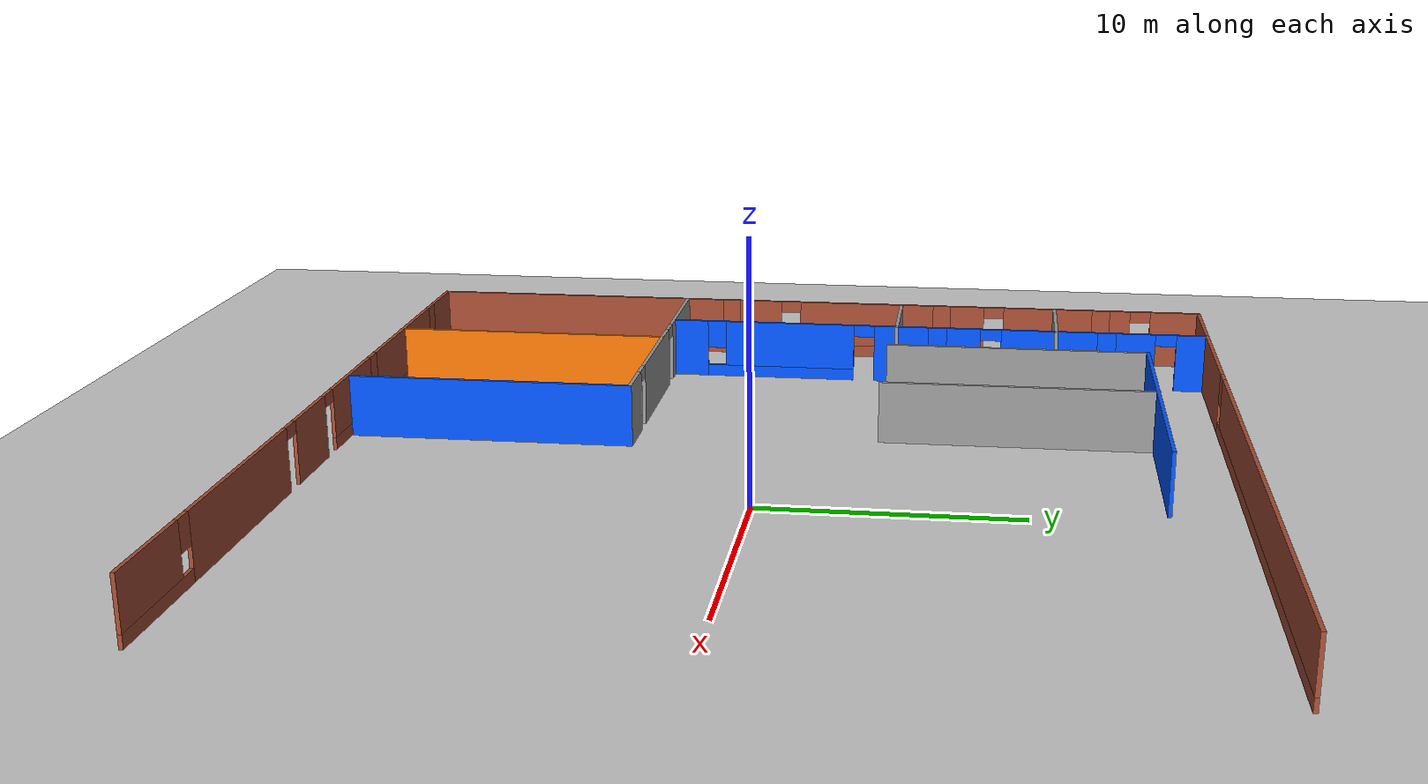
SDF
<sdf version="1.6">
 <world name="default">
  <model name="ground_plane">
   <static>1</static>
   <link name="link">
    <collision name="collision">
     <geometry><plane><normal>0 0 1</normal><size>100 100</size></plane></geometry>
     <surface>
      <contact><collide_bitmask>65535</collide_bitmask></contact>
      <friction><ode><mu>100</mu><mu2>50</mu2></ode></friction>
     </surface>
    </collision>
    <visual name="visual">
     <cast_shadows>0</cast_shadows>
     <geometry><plane><normal>0 0 1</normal><size>100 100</size></plane></geometry>
     <material>
      <script><uri>file://media/materials/scripts/gazebo.material</uri><name>Gazebo/Grey</name></script>
     </material>
    </visual>
   </link>
  </model>
  <model name="mybuilding">
   <pose>-3.17483 0.2831 0 0 -0 0</pose>
   <link name="Wall_0">
    <pose>-0.032167 17.425 0 0 -0 0.001673</pose>
    <visual name="Wall_0_Visual_0">
     <pose>-12.5646 0 1.25 0 -0 0</pose>
     <geometry><box><size>9.77748 0.15 2.5</size></box></geometry>
     <material>
      <script><uri>file://media/materials/scripts/gazebo.material</uri><name>Gazebo/Bricks</name></script>
      <ambient>1 1 1 1</ambient>
     </material>
     <meta><layer>0</layer></meta>
    </visual>
    <collision name="Wall_0_Collision_0">
     <geometry><box><size>9.77748 0.15 2.5</size></box></geometry>
     <pose>-12.5646 0 1.25 0 -0 0</pose>
    </collision>
    <visual name="Wall_0_Visual_1">
     <pose>4.88874 0 0.25 0 -0 0</pose>
     <geometry><box><size>25.1293 0.15 0.5</size></box></geometry>
     <material>
      <script><uri>file://media/materials/scripts/gazebo.material</uri><name>Gazebo/Bricks</name></script>
      <ambient>1 1 1 1</ambient>
     </material>
     <meta><layer>0</layer></meta>
    </visual>
    <collision name="Wall_0_Collision_1">
     <geometry><box><size>25.1293 0.15 0.5</size></box></geometry>
     <pose>4.88874 0 0.25 0 -0 0</pose>
    </collision>
    <visual name="Wall_0_Visual_2">
     <pose>5.28874 0 1.5 0 -0 0</pose>
     <geometry><box><size>24.3293 0.15 2</size></box></geometry>
     <material>
      <script><uri>file://media/materials/scripts/gazebo.material</uri><name>Gazebo/Bricks</name></script>
      <ambient>1 1 1 1</ambient>
     </material>
     <meta><layer>0</layer></meta>
    </visual>
    <collision name="Wall_0_Collision_2">
     <geometry><box><size>24.3293 0.15 2</size></box></geometry>
     <pose>5.28874 0 1.5 0 -0 0</pose>
    </collision>
    <visual name="Wall_0_Visual_3">
     <pose>-7.2759 0 1.9 0 -0 0</pose>
     <geometry><box><size>0.8 0.15 1.2</size></box></geometry>
     <material>
      <script><uri>file://media/materials/scripts/gazebo.material</uri><name>Gazebo/Bricks</name></script>
      <ambient>1 1 1 1</ambient>
     </material>
     <meta><layer>0</layer></meta>
    </visual>
    <collision name="Wall_0_Collision_3">
     <geometry><box><size>0.8 0.15 1.2</size></box></geometry>
     <pose>-7.2759 0 1.9 0 -0 0</pose>
    </collision>
   </link>
   <link name="Wall_11">
    <pose>-0.003817 -17.4439 0 0 -0 0.000584</pose>
    <visual name="Wall_11_Visual_0">
     <pose>-16.2159 0 1.25 0 -0 0</pose>
     <geometry><box><size>2.53083 0.15 2.5</size></box></geometry>
     <material>
      <script><uri>file://media/materials/scripts/gazebo.material</uri><name>Gazebo/Bricks</name></script>
      <ambient>1 1 1 1</ambient>
     </material>
     <meta><layer>0</layer></meta>
    </visual>
    <collision name="Wall_11_Collision_0">
     <geometry><box><size>2.53083 0.15 2.5</size></box></geometry>
     <pose>-16.2159 0 1.25 0 -0 0</pose>
    </collision>
    <visual name="Wall_11_Visual_1">
     <pose>1.13173 0 1.25 0 -0 0</pose>
     <geometry><box><size>3.14674 0.15 2.5</size></box></geometry>
     <material>
      <script><uri>file://media/materials/scripts/gazebo.material</uri><name>Gazebo/Bricks</name></script>
      <ambient>1 1 1 1</ambient>
     </material>
     <meta><layer>0</layer></meta>
    </visual>
    <collision name="Wall_11_Collision_1">
     <geometry><box><size>3.14674 0.15 2.5</size></box></geometry>
     <pose>1.13173 0 1.25 0 -0 0</pose>
    </collision>
    <visual name="Wall_11_Visual_2">
     <pose>7.9258 0 1.25 0 -0 0</pose>
     <geometry><box><size>8.64142 0.15 2.5</size></box></geometry>
     <material>
      <script><uri>file://media/materials/scripts/gazebo.material</uri><name>Gazebo/Bricks</name></script>
      <ambient>1 1 1 1</ambient>
     </material>
     <meta><layer>0</layer></meta>
    </visual>
    <collision name="Wall_11_Collision_2">
     <geometry><box><size>8.64142 0.15 2.5</size></box></geometry>
     <pose>7.9258 0 1.25 0 -0 0</pose>
    </collision>
    <visual name="Wall_11_Visual_3">
     <pose>-8.14608 0 0.25 0 -0 0</pose>
     <geometry><box><size>13.6089 0.15 0.5</size></box></geometry>
     <material>
      <script><uri>file://media/materials/scripts/gazebo.material</uri><name>Gazebo/Bricks</name></script>
      <ambient>1 1 1 1</ambient>
     </material>
     <meta><layer>0</layer></meta>
    </visual>
    <collision name="Wall_11_Collision_3">
     <geometry><box><size>13.6089 0.15 0.5</size></box></geometry>
     <pose>-8.14608 0 0.25 0 -0 0</pose>
    </collision>
    <visual name="Wall_11_Visual_4">
     <pose>14.8639 0 0.25 0 -0 0</pose>
     <geometry><box><size>5.23484 0.15 0.5</size></box></geometry>
     <material>
      <script><uri>file://media/materials/scripts/gazebo.material</uri><name>Gazebo/Bricks</name></script>
      <ambient>1 1 1 1</ambient>
     </material>
     <meta><layer>0</layer></meta>
    </visual>
    <collision name="Wall_11_Collision_4">
     <geometry><box><size>5.23484 0.15 0.5</size></box></geometry>
     <pose>14.8639 0 0.25 0 -0 0</pose>
    </collision>
    <visual name="Wall_11_Visual_5">
     <pose>-10.4098 0 1.5 0 -0 0</pose>
     <geometry><box><size>7.48141 0.15 2</size></box></geometry>
     <material>
      <script><uri>file://media/materials/scripts/gazebo.material</uri><name>Gazebo/Bricks</name></script>
      <ambient>1 1 1 1</ambient>
     </material>
     <meta><layer>0</layer></meta>
    </visual>
    <collision name="Wall_11_Collision_5">
     <geometry><box><size>7.48141 0.15 2</size></box></geometry>
     <pose>-10.4098 0 1.5 0 -0 0</pose>
    </collision>
    <visual name="Wall_11_Visual_6">
     <pose>-3.60538 0 1.5 0 -0 0</pose>
     <geometry><box><size>4.52747 0.15 2</size></box></geometry>
     <material>
      <script><uri>file://media/materials/scripts/gazebo.material</uri><name>Gazebo/Bricks</name></script>
      <ambient>1 1 1 1</ambient>
     </material>
     <meta><layer>0</layer></meta>
    </visual>
    <collision name="Wall_11_Collision_6">
     <geometry><box><size>4.52747 0.15 2</size></box></geometry>
     <pose>-3.60538 0 1.5 0 -0 0</pose>
    </collision>
    <visual name="Wall_11_Visual_7">
     <pose>-3.60538 0 1.5 0 -0 0</pose>
     <geometry><box><size>4.52747 0.15 2</size></box></geometry>
     <material>
      <script><uri>file://media/materials/scripts/gazebo.material</uri><name>Gazebo/Bricks</name></script>
      <ambient>1 1 1 1</ambient>
     </material>
     <meta><layer>0</layer></meta>
    </visual>
    <collision name="Wall_11_Collision_7">
     <geometry><box><size>4.52747 0.15 2</size></box></geometry>
     <pose>-3.60538 0 1.5 0 -0 0</pose>
    </collision>
    <visual name="Wall_11_Visual_8">
     <pose>15.2639 0 1.5 0 -0 0</pose>
     <geometry><box><size>4.43484 0.15 2</size></box></geometry>
     <material>
      <script><uri>file://media/materials/scripts/gazebo.material</uri><name>Gazebo/Bricks</name></script>
      <ambient>1 1 1 1</ambient>
     </material>
     <meta><layer>0</layer></meta>
    </visual>
    <collision name="Wall_11_Collision_8">
     <geometry><box><size>4.43484 0.15 2</size></box></geometry>
     <pose>15.2639 0 1.5 0 -0 0</pose>
    </collision>
    <visual name="Wall_11_Visual_9">
     <pose>-14.5505 0 1.9 0 -0 0</pose>
     <geometry><box><size>0.8 0.15 1.2</size></box></geometry>
     <material>
      <script><uri>file://media/materials/scripts/gazebo.material</uri><name>Gazebo/Bricks</name></script>
      <ambient>1 1 1 1</ambient>
     </material>
     <meta><layer>0</layer></meta>
    </visual>
    <collision name="Wall_11_Collision_9">
     <geometry><box><size>0.8 0.15 1.2</size></box></geometry>
     <pose>-14.5505 0 1.9 0 -0 0</pose>
    </collision>
    <visual name="Wall_11_Visual_10">
     <pose>12.6465 0 1.9 0 -0 0</pose>
     <geometry><box><size>0.8 0.15 1.2</size></box></geometry>
     <material>
      <script><uri>file://media/materials/scripts/gazebo.material</uri><name>Gazebo/Bricks</name></script>
      <ambient>1 1 1 1</ambient>
     </material>
     <meta><layer>0</layer></meta>
    </visual>
    <collision name="Wall_11_Collision_10">
     <geometry><box><size>0.8 0.15 1.2</size></box></geometry>
     <pose>12.6465 0 1.9 0 -0 0</pose>
    </collision>
    <visual name="Wall_11_Visual_11">
     <pose>-6.26911 0 1.9 0 -0 0</pose>
     <geometry><box><size>0.8 0.15 1.2</size></box></geometry>
     <material>
      <script><uri>file://media/materials/scripts/gazebo.material</uri><name>Gazebo/Bricks</name></script>
      <ambient>1 1 1 1</ambient>
     </material>
     <meta><layer>0</layer></meta>
    </visual>
    <collision name="Wall_11_Collision_11">
     <geometry><box><size>0.8 0.15 1.2</size></box></geometry>
     <pose>-6.26911 0 1.9 0 -0 0</pose>
    </collision>
    <visual name="Wall_11_Visual_12">
     <pose>3.1551 0 2.25 0 -0 0</pose>
     <geometry><box><size>0.9 0.15 0.5</size></box></geometry>
     <material>
      <script><uri>file://media/materials/scripts/gazebo.material</uri><name>Gazebo/Bricks</name></script>
      <ambient>1 1 1 1</ambient>
     </material>
     <meta><layer>0</layer></meta>
    </visual>
    <collision name="Wall_11_Collision_12">
     <geometry><box><size>0.9 0.15 0.5</size></box></geometry>
     <pose>3.1551 0 2.25 0 -0 0</pose>
    </collision>
    <visual name="Wall_11_Visual_13">
     <pose>-0.89164 0 2.25 0 -0 0</pose>
     <geometry><box><size>0.9 0.15 0.5</size></box></geometry>
     <material>
      <script><uri>file://media/materials/scripts/gazebo.material</uri><name>Gazebo/Bricks</name></script>
      <ambient>1 1 1 1</ambient>
     </material>
     <meta><layer>0</layer></meta>
    </visual>
    <collision name="Wall_11_Collision_13">
     <geometry><box><size>0.9 0.15 0.5</size></box></geometry>
     <pose>-0.89164 0 2.25 0 -0 0</pose>
    </collision>
    <visual name="Wall_11_Visual_14">
     <pose>-0.89164 0 2.25 0 -0 0</pose>
     <geometry><box><size>0.9 0.15 0.5</size></box></geometry>
     <material>
      <script><uri>file://media/materials/scripts/gazebo.material</uri><name>Gazebo/Bricks</name></script>
      <ambient>1 1 1 1</ambient>
     </material>
     <meta><layer>0</layer></meta>
    </visual>
    <collision name="Wall_11_Collision_14">
     <geometry><box><size>0.9 0.15 0.5</size></box></geometry>
     <pose>-0.89164 0 2.25 0 -0 0</pose>
    </collision>
   </link>
   <link name="Wall_13">
    <pose>-10.3069 -5.93049 0 0 -0 0</pose>
    <visual name="Wall_13_Visual_0">
     <pose>-4.77531 0 1.25 0 -0 0</pose>
     <geometry><box><size>4.69938 0.15 2.5</size></box></geometry>
     <material>
      <script><uri>file://media/materials/scripts/gazebo.material</uri><name>Gazebo/Grey</name></script>
      <ambient>1 1 1 1</ambient>
     </material>
     <meta><layer>0</layer></meta>
    </visual>
    <collision name="Wall_13_Collision_0">
     <geometry><box><size>4.69938 0.15 2.5</size></box></geometry>
     <pose>-4.77531 0 1.25 0 -0 0</pose>
    </collision>
    <visual name="Wall_13_Visual_1">
     <pose>1.31815 0 1.25 0 -0 0</pose>
     <geometry><box><size>5.68753 0.15 2.5</size></box></geometry>
     <material>
      <script><uri>file://media/materials/scripts/gazebo.material</uri><name>Gazebo/Grey</name></script>
      <ambient>1 1 1 1</ambient>
     </material>
     <meta><layer>0</layer></meta>
    </visual>
    <collision name="Wall_13_Collision_1">
     <geometry><box><size>5.68753 0.15 2.5</size></box></geometry>
     <pose>1.31815 0 1.25 0 -0 0</pose>
    </collision>
    <visual name="Wall_13_Visual_2">
     <pose>6.09346 0 1.25 0 -0 0</pose>
     <geometry><box><size>2.06308 0.15 2.5</size></box></geometry>
     <material>
      <script><uri>file://media/materials/scripts/gazebo.material</uri><name>Gazebo/Grey</name></script>
      <ambient>1 1 1 1</ambient>
     </material>
     <meta><layer>0</layer></meta>
    </visual>
    <collision name="Wall_13_Collision_2">
     <geometry><box><size>2.06308 0.15 2.5</size></box></geometry>
     <pose>6.09346 0 1.25 0 -0 0</pose>
    </collision>
    <visual name="Wall_13_Visual_3">
     <pose>-1.97562 0 2.25 0 -0 0</pose>
     <geometry><box><size>0.9 0.15 0.5</size></box></geometry>
     <material>
      <script><uri>file://media/materials/scripts/gazebo.material</uri><name>Gazebo/Grey</name></script>
      <ambient>1 1 1 1</ambient>
     </material>
     <meta><layer>0</layer></meta>
    </visual>
    <collision name="Wall_13_Collision_3">
     <geometry><box><size>0.9 0.15 0.5</size></box></geometry>
     <pose>-1.97562 0 2.25 0 -0 0</pose>
    </collision>
    <visual name="Wall_13_Visual_4">
     <pose>4.61192 0 2.25 0 -0 0</pose>
     <geometry><box><size>0.9 0.15 0.5</size></box></geometry>
     <material>
      <script><uri>file://media/materials/scripts/gazebo.material</uri><name>Gazebo/Grey</name></script>
      <ambient>1 1 1 1</ambient>
     </material>
     <meta><layer>0</layer></meta>
    </visual>
    <collision name="Wall_13_Collision_4">
     <geometry><box><size>0.9 0.15 0.5</size></box></geometry>
     <pose>4.61192 0 2.25 0 -0 0</pose>
    </collision>
   </link>
   <link name="Wall_14">
    <collision name="Wall_14_Collision">
     <geometry><box><size>11.5 0.15 2.5</size></box></geometry>
     <pose>0 0 1.25 0 -0 0</pose>
    </collision>
    <visual name="Wall_14_Visual">
     <pose>0 0 1.25 0 -0 0</pose>
     <geometry><box><size>11.5 0.15 2.5</size></box></geometry>
     <material>
      <script><uri>file://media/materials/scripts/gazebo.material</uri><name>Gazebo/Grey</name></script>
      <ambient>0 0.333333 1 1</ambient>
     </material>
     <meta><layer>0</layer></meta>
    </visual>
    <pose>-3.2569 -11.6055 0 0 0 -1.5708</pose>
   </link>
   <link name="Wall_16">
    <collision name="Wall_16_Collision">
     <geometry><box><size>11.5 0.15 2.5</size></box></geometry>
     <pose>0 0 1.25 0 -0 0</pose>
    </collision>
    <visual name="Wall_16_Visual">
     <pose>0 0 1.25 0 -0 0</pose>
     <geometry><box><size>11.5 0.15 2.5</size></box></geometry>
     <material>
      <script><uri>file://media/materials/scripts/gazebo.material</uri><name>Gazebo/Grey</name></script>
      <ambient>0.996078 0.47451 0.0196078 1</ambient>
     </material>
     <meta><layer>0</layer></meta>
    </visual>
    <pose>-10.6102 -11.6055 0 0 0 -1.5708</pose>
   </link>
   <link name="Wall_18">
    <pose>-13.5315 5.73081 0 0 -0 1.5708</pose>
    <visual name="Wall_18_Visual_0">
     <pose>-10.919 0 1.25 0 -0 0</pose>
     <geometry><box><size>1.61207 0.15 2.5</size></box></geometry>
     <material>
      <script><uri>file://media/materials/scripts/gazebo.material</uri><name>Gazebo/Grey</name></script>
      <ambient>0 0.333333 1 1</ambient>
     </material>
     <meta><layer>0</layer></meta>
    </visual>
    <collision name="Wall_18_Collision_0">
     <geometry><box><size>1.61207 0.15 2.5</size></box></geometry>
     <pose>-10.919 0 1.25 0 -0 0</pose>
    </collision>
    <visual name="Wall_18_Visual_1">
     <pose>-1.52186 0 1.25 0 -0 0</pose>
     <geometry><box><size>2.37107 0.15 2.5</size></box></geometry>
     <material>
      <script><uri>file://media/materials/scripts/gazebo.material</uri><name>Gazebo/Grey</name></script>
      <ambient>0 0.333333 1 1</ambient>
     </material>
     <meta><layer>0</layer></meta>
    </visual>
    <collision name="Wall_18_Collision_1">
     <geometry><box><size>2.37107 0.15 2.5</size></box></geometry>
     <pose>-1.52186 0 1.25 0 -0 0</pose>
    </collision>
    <visual name="Wall_18_Visual_2">
     <pose>4.9225 0 1.25 0 -0 0</pose>
     <geometry><box><size>4.15508 0.15 2.5</size></box></geometry>
     <material>
      <script><uri>file://media/materials/scripts/gazebo.material</uri><name>Gazebo/Grey</name></script>
      <ambient>0 0.333333 1 1</ambient>
     </material>
     <meta><layer>0</layer></meta>
    </visual>
    <collision name="Wall_18_Collision_2">
     <geometry><box><size>4.15508 0.15 2.5</size></box></geometry>
     <pose>4.9225 0 1.25 0 -0 0</pose>
    </collision>
    <visual name="Wall_18_Visual_3">
     <pose>11.0493 0 1.25 0 -0 0</pose>
     <geometry><box><size>1.35144 0.15 2.5</size></box></geometry>
     <material>
      <script><uri>file://media/materials/scripts/gazebo.material</uri><name>Gazebo/Grey</name></script>
      <ambient>0 0.333333 1 1</ambient>
     </material>
     <meta><layer>0</layer></meta>
    </visual>
    <collision name="Wall_18_Collision_3">
     <geometry><box><size>1.35144 0.15 2.5</size></box></geometry>
     <pose>11.0493 0 1.25 0 -0 0</pose>
    </collision>
    <visual name="Wall_18_Visual_4">
     <pose>-6.86016 0 0.25 0 -0 0</pose>
     <geometry><box><size>6.50554 0.15 0.5</size></box></geometry>
     <material>
      <script><uri>file://media/materials/scripts/gazebo.material</uri><name>Gazebo/Grey</name></script>
      <ambient>0 0.333333 1 1</ambient>
     </material>
     <meta><layer>0</layer></meta>
    </visual>
    <collision name="Wall_18_Collision_4">
     <geometry><box><size>6.50554 0.15 0.5</size></box></geometry>
     <pose>-6.86016 0 0.25 0 -0 0</pose>
    </collision>
    <visual name="Wall_18_Visual_5">
     <pose>0.804316 0 0.25 0 -0 0</pose>
     <geometry><box><size>2.28128 0.15 0.5</size></box></geometry>
     <material>
      <script><uri>file://media/materials/scripts/gazebo.material</uri><name>Gazebo/Grey</name></script>
      <ambient>0 0.333333 1 1</ambient>
     </material>
     <meta><layer>0</layer></meta>
    </visual>
    <collision name="Wall_18_Collision_5">
     <geometry><box><size>2.28128 0.15 0.5</size></box></geometry>
     <pose>0.804316 0 0.25 0 -0 0</pose>
    </collision>
    <visual name="Wall_18_Visual_6">
     <pose>8.2368 0 0.25 0 -0 0</pose>
     <geometry><box><size>2.47352 0.15 0.5</size></box></geometry>
     <material>
      <script><uri>file://media/materials/scripts/gazebo.material</uri><name>Gazebo/Grey</name></script>
      <ambient>0 0.333333 1 1</ambient>
     </material>
     <meta><layer>0</layer></meta>
    </visual>
    <collision name="Wall_18_Collision_6">
     <geometry><box><size>2.47352 0.15 0.5</size></box></geometry>
     <pose>8.2368 0 0.25 0 -0 0</pose>
    </collision>
    <visual name="Wall_18_Visual_7">
     <pose>-6.46016 0 1.5 0 -0 0</pose>
     <geometry><box><size>5.70554 0.15 2</size></box></geometry>
     <material>
      <script><uri>file://media/materials/scripts/gazebo.material</uri><name>Gazebo/Grey</name></script>
      <ambient>0 0.333333 1 1</ambient>
     </material>
     <meta><layer>0</layer></meta>
    </visual>
    <collision name="Wall_18_Collision_7">
     <geometry><box><size>5.70554 0.15 2</size></box></geometry>
     <pose>-6.46016 0 1.5 0 -0 0</pose>
    </collision>
    <visual name="Wall_18_Visual_8">
     <pose>-6.46016 0 1.5 0 -0 0</pose>
     <geometry><box><size>5.70554 0.15 2</size></box></geometry>
     <material>
      <script><uri>file://media/materials/scripts/gazebo.material</uri><name>Gazebo/Grey</name></script>
      <ambient>0 0.333333 1 1</ambient>
     </material>
     <meta><layer>0</layer></meta>
    </visual>
    <collision name="Wall_18_Collision_8">
     <geometry><box><size>5.70554 0.15 2</size></box></geometry>
     <pose>-6.46016 0 1.5 0 -0 0</pose>
    </collision>
    <visual name="Wall_18_Visual_9">
     <pose>1.20432 0 1.5 0 -0 0</pose>
     <geometry><box><size>1.48128 0.15 2</size></box></geometry>
     <material>
      <script><uri>file://media/materials/scripts/gazebo.material</uri><name>Gazebo/Grey</name></script>
      <ambient>0 0.333333 1 1</ambient>
     </material>
     <meta><layer>0</layer></meta>
    </visual>
    <collision name="Wall_18_Collision_9">
     <geometry><box><size>1.48128 0.15 2</size></box></geometry>
     <pose>1.20432 0 1.5 0 -0 0</pose>
    </collision>
    <visual name="Wall_18_Visual_10">
     <pose>1.20432 0 1.5 0 -0 0</pose>
     <geometry><box><size>1.48128 0.15 2</size></box></geometry>
     <material>
      <script><uri>file://media/materials/scripts/gazebo.material</uri><name>Gazebo/Grey</name></script>
      <ambient>0 0.333333 1 1</ambient>
     </material>
     <meta><layer>0</layer></meta>
    </visual>
    <collision name="Wall_18_Collision_10">
     <geometry><box><size>1.48128 0.15 2</size></box></geometry>
     <pose>1.20432 0 1.5 0 -0 0</pose>
    </collision>
    <visual name="Wall_18_Visual_11">
     <pose>8.6368 0 1.5 0 -0 0</pose>
     <geometry><box><size>1.67352 0.15 2</size></box></geometry>
     <material>
      <script><uri>file://media/materials/scripts/gazebo.material</uri><name>Gazebo/Grey</name></script>
      <ambient>0 0.333333 1 1</ambient>
     </material>
     <meta><layer>0</layer></meta>
    </visual>
    <collision name="Wall_18_Collision_11">
     <geometry><box><size>1.67352 0.15 2</size></box></geometry>
     <pose>8.6368 0 1.5 0 -0 0</pose>
    </collision>
    <visual name="Wall_18_Visual_12">
     <pose>-9.71293 0 1.9 0 -0 0</pose>
     <geometry><box><size>0.8 0.15 1.2</size></box></geometry>
     <material>
      <script><uri>file://media/materials/scripts/gazebo.material</uri><name>Gazebo/Grey</name></script>
      <ambient>0 0.333333 1 1</ambient>
     </material>
     <meta><layer>0</layer></meta>
    </visual>
    <collision name="Wall_18_Collision_12">
     <geometry><box><size>0.8 0.15 1.2</size></box></geometry>
     <pose>-9.71293 0 1.9 0 -0 0</pose>
    </collision>
    <visual name="Wall_18_Visual_13">
     <pose>0.063676 0 1.9 0 -0 0</pose>
     <geometry><box><size>0.8 0.15 1.2</size></box></geometry>
     <material>
      <script><uri>file://media/materials/scripts/gazebo.material</uri><name>Gazebo/Grey</name></script>
      <ambient>0 0.333333 1 1</ambient>
     </material>
     <meta><layer>0</layer></meta>
    </visual>
    <collision name="Wall_18_Collision_13">
     <geometry><box><size>0.8 0.15 1.2</size></box></geometry>
     <pose>0.063676 0 1.9 0 -0 0</pose>
    </collision>
    <visual name="Wall_18_Visual_14">
     <pose>7.40004 0 1.9 0 -0 0</pose>
     <geometry><box><size>0.8 0.15 1.2</size></box></geometry>
     <material>
      <script><uri>file://media/materials/scripts/gazebo.material</uri><name>Gazebo/Grey</name></script>
      <ambient>0 0.333333 1 1</ambient>
     </material>
     <meta><layer>0</layer></meta>
    </visual>
    <collision name="Wall_18_Collision_14">
     <geometry><box><size>0.8 0.15 1.2</size></box></geometry>
     <pose>7.40004 0 1.9 0 -0 0</pose>
    </collision>
    <visual name="Wall_18_Visual_15">
     <pose>-3.15739 0 2.25 0 -0 0</pose>
     <geometry><box><size>0.9 0.15 0.5</size></box></geometry>
     <material>
      <script><uri>file://media/materials/scripts/gazebo.material</uri><name>Gazebo/Grey</name></script>
      <ambient>0 0.333333 1 1</ambient>
     </material>
     <meta><layer>0</layer></meta>
    </visual>
    <collision name="Wall_18_Collision_15">
     <geometry><box><size>0.9 0.15 0.5</size></box></geometry>
     <pose>-3.15739 0 2.25 0 -0 0</pose>
    </collision>
    <visual name="Wall_18_Visual_16">
     <pose>-3.15739 0 2.25 0 -0 0</pose>
     <geometry><box><size>0.9 0.15 0.5</size></box></geometry>
     <material>
      <script><uri>file://media/materials/scripts/gazebo.material</uri><name>Gazebo/Grey</name></script>
      <ambient>0 0.333333 1 1</ambient>
     </material>
     <meta><layer>0</layer></meta>
    </visual>
    <collision name="Wall_18_Collision_16">
     <geometry><box><size>0.9 0.15 0.5</size></box></geometry>
     <pose>-3.15739 0 2.25 0 -0 0</pose>
    </collision>
    <visual name="Wall_18_Visual_17">
     <pose>2.39496 0 2.25 0 -0 0</pose>
     <geometry><box><size>0.9 0.15 0.5</size></box></geometry>
     <material>
      <script><uri>file://media/materials/scripts/gazebo.material</uri><name>Gazebo/Grey</name></script>
      <ambient>0 0.333333 1 1</ambient>
     </material>
     <meta><layer>0</layer></meta>
    </visual>
    <collision name="Wall_18_Collision_17">
     <geometry><box><size>0.9 0.15 0.5</size></box></geometry>
     <pose>2.39496 0 2.25 0 -0 0</pose>
    </collision>
    <visual name="Wall_18_Visual_18">
     <pose>2.39496 0 2.25 0 -0 0</pose>
     <geometry><box><size>0.9 0.15 0.5</size></box></geometry>
     <material>
      <script><uri>file://media/materials/scripts/gazebo.material</uri><name>Gazebo/Grey</name></script>
      <ambient>0 0.333333 1 1</ambient>
     </material>
     <meta><layer>0</layer></meta>
    </visual>
    <collision name="Wall_18_Collision_18">
     <geometry><box><size>0.9 0.15 0.5</size></box></geometry>
     <pose>2.39496 0 2.25 0 -0 0</pose>
    </collision>
    <visual name="Wall_18_Visual_19">
     <pose>9.92356 0 2.25 0 -0 0</pose>
     <geometry><box><size>0.9 0.15 0.5</size></box></geometry>
     <material>
      <script><uri>file://media/materials/scripts/gazebo.material</uri><name>Gazebo/Grey</name></script>
      <ambient>0 0.333333 1 1</ambient>
     </material>
     <meta><layer>0</layer></meta>
    </visual>
    <collision name="Wall_18_Collision_19">
     <geometry><box><size>0.9 0.15 0.5</size></box></geometry>
     <pose>9.92356 0 2.25 0 -0 0</pose>
    </collision>
   </link>
   <link name="Wall_29">
    <collision name="Wall_29_Collision">
     <geometry><box><size>4 0.15 2.5</size></box></geometry>
     <pose>0 0 1.25 0 -0 0</pose>
    </collision>
    <visual name="Wall_29_Visual">
     <pose>0 0 1.25 0 -0 0</pose>
     <geometry><box><size>4 0.15 2.5</size></box></geometry>
     <material>
      <script><uri>file://media/materials/scripts/gazebo.material</uri><name>Gazebo/Grey</name></script>
      <ambient>1 1 1 1</ambient>
     </material>
     <meta><layer>0</layer></meta>
    </visual>
    <pose>-15.435 10.9591 0 0 -0 0</pose>
   </link>
   <link name="Wall_31">
    <collision name="Wall_31_Collision">
     <geometry><box><size>4 0.15 2.5</size></box></geometry>
     <pose>0 0 1.25 0 -0 0</pose>
    </collision>
    <visual name="Wall_31_Visual">
     <pose>0 0 1.25 0 -0 0</pose>
     <geometry><box><size>4 0.15 2.5</size></box></geometry>
     <material>
      <script><uri>file://media/materials/scripts/gazebo.material</uri><name>Gazebo/Grey</name></script>
      <ambient>1 1 1 1</ambient>
     </material>
     <meta><layer>0</layer></meta>
    </visual>
    <pose>-15.435 4.00381 0 0 -0 0</pose>
   </link>
   <link name="Wall_39">
    <collision name="Wall_39_Collision">
     <geometry><box><size>11 0.15 2.5</size></box></geometry>
     <pose>0 0 1.25 0 -0 0</pose>
    </collision>
    <visual name="Wall_39_Visual">
     <pose>0 0 1.25 0 -0 0</pose>
     <geometry><box><size>11 0.15 2.5</size></box></geometry>
     <material>
      <script><uri>file://media/materials/scripts/gazebo.material</uri><name>Gazebo/Grey</name></script>
      <ambient>1 1 1 1</ambient>
     </material>
     <meta><layer>0</layer></meta>
    </visual>
    <pose>-10.5432 9.25802 0 0 -0 1.5708</pose>
   </link>
   <link name="Wall_40">
    <collision name="Wall_40_Collision">
     <geometry><box><size>13 0.15 2.5</size></box></geometry>
     <pose>0 0 1.25 0 -0 0</pose>
    </collision>
    <visual name="Wall_40_Visual">
     <pose>0 0 1.25 0 -0 0</pose>
     <geometry><box><size>13 0.15 2.5</size></box></geometry>
     <material>
      <script><uri>file://media/materials/scripts/gazebo.material</uri><name>Gazebo/Grey</name></script>
      <ambient>0 0.333333 1 1</ambient>
     </material>
     <meta><layer>0</layer></meta>
    </visual>
    <pose>-4.11821 14.683 0 0 -0 0</pose>
   </link>
   <link name="Wall_47">
    <collision name="Wall_47_Collision">
     <geometry><box><size>11 0.15 2.5</size></box></geometry>
     <pose>0 0 1.25 0 -0 0</pose>
    </collision>
    <visual name="Wall_47_Visual">
     <pose>0 0 1.25 0 -0 0</pose>
     <geometry><box><size>11 0.15 2.5</size></box></geometry>
     <material>
      <script><uri>file://media/materials/scripts/gazebo.material</uri><name>Gazebo/Grey</name></script>
      <ambient>1 1 1 1</ambient>
     </material>
     <meta><layer>0</layer></meta>
    </visual>
    <pose>-4.94212 9.2883 0 0 0 -1.5708</pose>
   </link>
   <link name="Wall_9">
    <pose>-17.4102 -0.029118 0 0 0 -1.5708</pose>
    <visual name="Wall_9_Visual_0">
     <pose>-16.3933 0 1.25 0 -0 0</pose>
     <geometry><box><size>2.21348 0.15 2.5</size></box></geometry>
     <material>
      <script><uri>file://media/materials/scripts/gazebo.material</uri><name>Gazebo/Bricks</name></script>
      <ambient>1 1 1 1</ambient>
     </material>
     <meta><layer>0</layer></meta>
    </visual>
    <collision name="Wall_9_Collision_0">
     <geometry><box><size>2.21348 0.15 2.5</size></box></geometry>
     <pose>-16.3933 0 1.25 0 -0 0</pose>
    </collision>
    <visual name="Wall_9_Visual_1">
     <pose>-13.9323 0 1.25 0 -0 0</pose>
     <geometry><box><size>0.908389 0.15 2.5</size></box></geometry>
     <material>
      <script><uri>file://media/materials/scripts/gazebo.material</uri><name>Gazebo/Bricks</name></script>
      <ambient>1 1 1 1</ambient>
     </material>
     <meta><layer>0</layer></meta>
    </visual>
    <collision name="Wall_9_Collision_1">
     <geometry><box><size>0.908389 0.15 2.5</size></box></geometry>
     <pose>-13.9323 0 1.25 0 -0 0</pose>
    </collision>
    <visual name="Wall_9_Visual_2">
     <pose>-7.04224 0 1.25 0 -0 0</pose>
     <geometry><box><size>1.51351 0.15 2.5</size></box></geometry>
     <material>
      <script><uri>file://media/materials/scripts/gazebo.material</uri><name>Gazebo/Bricks</name></script>
      <ambient>1 1 1 1</ambient>
     </material>
     <meta><layer>0</layer></meta>
    </visual>
    <collision name="Wall_9_Collision_2">
     <geometry><box><size>1.51351 0.15 2.5</size></box></geometry>
     <pose>-7.04224 0 1.25 0 -0 0</pose>
    </collision>
    <visual name="Wall_9_Visual_3">
     <pose>2.47345 0 1.25 0 -0 0</pose>
     <geometry><box><size>1.91159 0.15 2.5</size></box></geometry>
     <material>
      <script><uri>file://media/materials/scripts/gazebo.material</uri><name>Gazebo/Bricks</name></script>
      <ambient>1 1 1 1</ambient>
     </material>
     <meta><layer>0</layer></meta>
    </visual>
    <collision name="Wall_9_Collision_3">
     <geometry><box><size>1.91159 0.15 2.5</size></box></geometry>
     <pose>2.47345 0 1.25 0 -0 0</pose>
    </collision>
    <visual name="Wall_9_Visual_4">
     <pose>-11.0886 0 0.25 0 -0 0</pose>
     <geometry><box><size>4.77914 0.15 0.5</size></box></geometry>
     <material>
      <script><uri>file://media/materials/scripts/gazebo.material</uri><name>Gazebo/Bricks</name></script>
      <ambient>1 1 1 1</ambient>
     </material>
     <meta><layer>0</layer></meta>
    </visual>
    <collision name="Wall_9_Collision_4">
     <geometry><box><size>4.77914 0.15 0.5</size></box></geometry>
     <pose>-11.0886 0 0.25 0 -0 0</pose>
    </collision>
    <visual name="Wall_9_Visual_5">
     <pose>-2.83391 0 0.25 0 -0 0</pose>
     <geometry><box><size>6.90314 0.15 0.5</size></box></geometry>
     <material>
      <script><uri>file://media/materials/scripts/gazebo.material</uri><name>Gazebo/Bricks</name></script>
      <ambient>1 1 1 1</ambient>
     </material>
     <meta><layer>0</layer></meta>
    </visual>
    <collision name="Wall_9_Collision_5">
     <geometry><box><size>6.90314 0.15 0.5</size></box></geometry>
     <pose>-2.83391 0 0.25 0 -0 0</pose>
    </collision>
    <visual name="Wall_9_Visual_6">
     <pose>10.4646 0 0.25 0 -0 0</pose>
     <geometry><box><size>14.0708 0.15 0.5</size></box></geometry>
     <material>
      <script><uri>file://media/materials/scripts/gazebo.material</uri><name>Gazebo/Bricks</name></script>
      <ambient>1 1 1 1</ambient>
     </material>
     <meta><layer>0</layer></meta>
    </visual>
    <collision name="Wall_9_Collision_6">
     <geometry><box><size>14.0708 0.15 0.5</size></box></geometry>
     <pose>10.4646 0 0.25 0 -0 0</pose>
    </collision>
    <visual name="Wall_9_Visual_7">
     <pose>-10.6886 0 1.5 0 -0 0</pose>
     <geometry><box><size>3.97914 0.15 2</size></box></geometry>
     <material>
      <script><uri>file://media/materials/scripts/gazebo.material</uri><name>Gazebo/Bricks</name></script>
      <ambient>1 1 1 1</ambient>
     </material>
     <meta><layer>0</layer></meta>
    </visual>
    <collision name="Wall_9_Collision_7">
     <geometry><box><size>3.97914 0.15 2</size></box></geometry>
     <pose>-10.6886 0 1.5 0 -0 0</pose>
    </collision>
    <visual name="Wall_9_Visual_8">
     <pose>-10.6886 0 1.5 0 -0 0</pose>
     <geometry><box><size>3.97914 0.15 2</size></box></geometry>
     <material>
      <script><uri>file://media/materials/scripts/gazebo.material</uri><name>Gazebo/Bricks</name></script>
      <ambient>1 1 1 1</ambient>
     </material>
     <meta><layer>0</layer></meta>
    </visual>
    <collision name="Wall_9_Collision_8">
     <geometry><box><size>3.97914 0.15 2</size></box></geometry>
     <pose>-10.6886 0 1.5 0 -0 0</pose>
    </collision>
    <visual name="Wall_9_Visual_9">
     <pose>-2.43391 0 1.5 0 -0 0</pose>
     <geometry><box><size>6.10314 0.15 2</size></box></geometry>
     <material>
      <script><uri>file://media/materials/scripts/gazebo.material</uri><name>Gazebo/Bricks</name></script>
      <ambient>1 1 1 1</ambient>
     </material>
     <meta><layer>0</layer></meta>
    </visual>
    <collision name="Wall_9_Collision_9">
     <geometry><box><size>6.10314 0.15 2</size></box></geometry>
     <pose>-2.43391 0 1.5 0 -0 0</pose>
    </collision>
    <visual name="Wall_9_Visual_10">
     <pose>-2.43391 0 1.5 0 -0 0</pose>
     <geometry><box><size>6.10314 0.15 2</size></box></geometry>
     <material>
      <script><uri>file://media/materials/scripts/gazebo.material</uri><name>Gazebo/Bricks</name></script>
      <ambient>1 1 1 1</ambient>
     </material>
     <meta><layer>0</layer></meta>
    </visual>
    <collision name="Wall_9_Collision_10">
     <geometry><box><size>6.10314 0.15 2</size></box></geometry>
     <pose>-2.43391 0 1.5 0 -0 0</pose>
    </collision>
    <visual name="Wall_9_Visual_11">
     <pose>10.8646 0 1.5 0 -0 0</pose>
     <geometry><box><size>13.2708 0.15 2</size></box></geometry>
     <material>
      <script><uri>file://media/materials/scripts/gazebo.material</uri><name>Gazebo/Bricks</name></script>
      <ambient>1 1 1 1</ambient>
     </material>
     <meta><layer>0</layer></meta>
    </visual>
    <collision name="Wall_9_Collision_11">
     <geometry><box><size>13.2708 0.15 2</size></box></geometry>
     <pose>10.8646 0 1.5 0 -0 0</pose>
    </collision>
    <visual name="Wall_9_Visual_12">
     <pose>-13.0781 0 1.9 0 -0 0</pose>
     <geometry><box><size>0.8 0.15 1.2</size></box></geometry>
     <material>
      <script><uri>file://media/materials/scripts/gazebo.material</uri><name>Gazebo/Bricks</name></script>
      <ambient>1 1 1 1</ambient>
     </material>
     <meta><layer>0</layer></meta>
    </visual>
    <collision name="Wall_9_Collision_12">
     <geometry><box><size>0.8 0.15 1.2</size></box></geometry>
     <pose>-13.0781 0 1.9 0 -0 0</pose>
    </collision>
    <visual name="Wall_9_Visual_13">
     <pose>-5.88548 0 1.9 0 -0 0</pose>
     <geometry><box><size>0.8 0.15 1.2</size></box></geometry>
     <material>
      <script><uri>file://media/materials/scripts/gazebo.material</uri><name>Gazebo/Bricks</name></script>
      <ambient>1 1 1 1</ambient>
     </material>
     <meta><layer>0</layer></meta>
    </visual>
    <collision name="Wall_9_Collision_13">
     <geometry><box><size>0.8 0.15 1.2</size></box></geometry>
     <pose>-5.88548 0 1.9 0 -0 0</pose>
    </collision>
    <visual name="Wall_9_Visual_14">
     <pose>3.82925 0 1.9 0 -0 0</pose>
     <geometry><box><size>0.8 0.15 1.2</size></box></geometry>
     <material>
      <script><uri>file://media/materials/scripts/gazebo.material</uri><name>Gazebo/Bricks</name></script>
      <ambient>1 1 1 1</ambient>
     </material>
     <meta><layer>0</layer></meta>
    </visual>
    <collision name="Wall_9_Collision_14">
     <geometry><box><size>0.8 0.15 1.2</size></box></geometry>
     <pose>3.82925 0 1.9 0 -0 0</pose>
    </collision>
    <visual name="Wall_9_Visual_15">
     <pose>-14.8365 0 2.25 0 -0 0</pose>
     <geometry><box><size>0.9 0.15 0.5</size></box></geometry>
     <material>
      <script><uri>file://media/materials/scripts/gazebo.material</uri><name>Gazebo/Bricks</name></script>
      <ambient>1 1 1 1</ambient>
     </material>
     <meta><layer>0</layer></meta>
    </visual>
    <collision name="Wall_9_Collision_15">
     <geometry><box><size>0.9 0.15 0.5</size></box></geometry>
     <pose>-14.8365 0 2.25 0 -0 0</pose>
    </collision>
    <visual name="Wall_9_Visual_16">
     <pose>-8.24899 0 2.25 0 -0 0</pose>
     <geometry><box><size>0.9 0.15 0.5</size></box></geometry>
     <material>
      <script><uri>file://media/materials/scripts/gazebo.material</uri><name>Gazebo/Bricks</name></script>
      <ambient>1 1 1 1</ambient>
     </material>
     <meta><layer>0</layer></meta>
    </visual>
    <collision name="Wall_9_Collision_16">
     <geometry><box><size>0.9 0.15 0.5</size></box></geometry>
     <pose>-8.24899 0 2.25 0 -0 0</pose>
    </collision>
    <visual name="Wall_9_Visual_17">
     <pose>-8.24899 0 2.25 0 -0 0</pose>
     <geometry><box><size>0.9 0.15 0.5</size></box></geometry>
     <material>
      <script><uri>file://media/materials/scripts/gazebo.material</uri><name>Gazebo/Bricks</name></script>
      <ambient>1 1 1 1</ambient>
     </material>
     <meta><layer>0</layer></meta>
    </visual>
    <collision name="Wall_9_Collision_17">
     <geometry><box><size>0.9 0.15 0.5</size></box></geometry>
     <pose>-8.24899 0 2.25 0 -0 0</pose>
    </collision>
    <visual name="Wall_9_Visual_18">
     <pose>1.06766 0 2.25 0 -0 0</pose>
     <geometry><box><size>0.9 0.15 0.5</size></box></geometry>
     <material>
      <script><uri>file://media/materials/scripts/gazebo.material</uri><name>Gazebo/Bricks</name></script>
      <ambient>1 1 1 1</ambient>
     </material>
     <meta><layer>0</layer></meta>
    </visual>
    <collision name="Wall_9_Collision_18">
     <geometry><box><size>0.9 0.15 0.5</size></box></geometry>
     <pose>1.06766 0 2.25 0 -0 0</pose>
    </collision>
    <visual name="Wall_9_Visual_19">
     <pose>1.06766 0 2.25 0 -0 0</pose>
     <geometry><box><size>0.9 0.15 0.5</size></box></geometry>
     <material>
      <script><uri>file://media/materials/scripts/gazebo.material</uri><name>Gazebo/Bricks</name></script>
      <ambient>1 1 1 1</ambient>
     </material>
     <meta><layer>0</layer></meta>
    </visual>
    <collision name="Wall_9_Collision_19">
     <geometry><box><size>0.9 0.15 0.5</size></box></geometry>
     <pose>1.06766 0 2.25 0 -0 0</pose>
    </collision>
   </link>
   <static>1</static>
  </model>
 </world>
</sdf>
